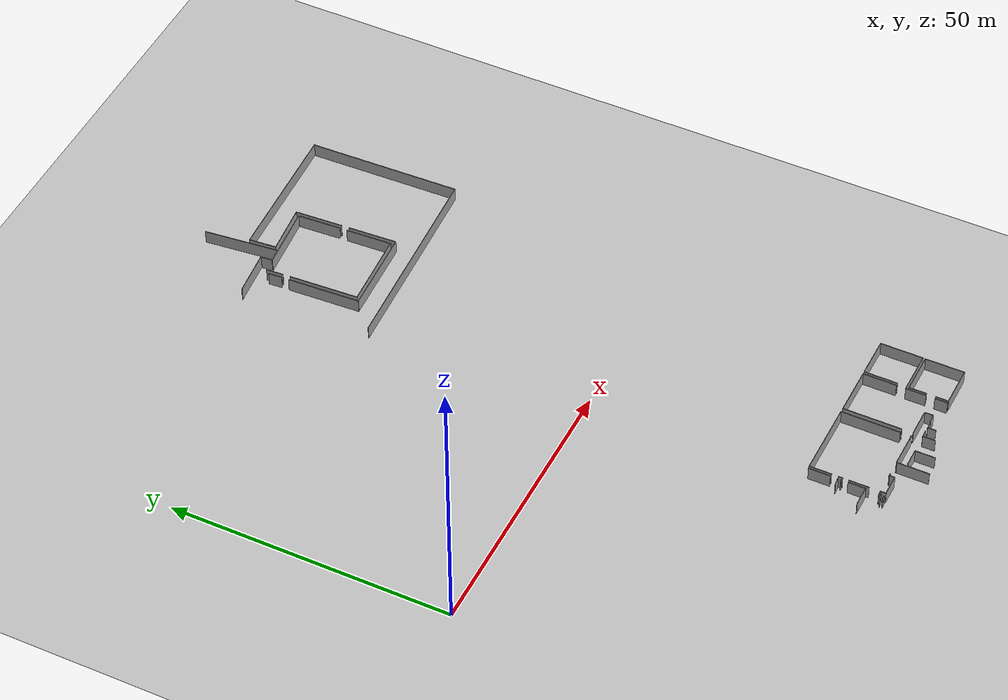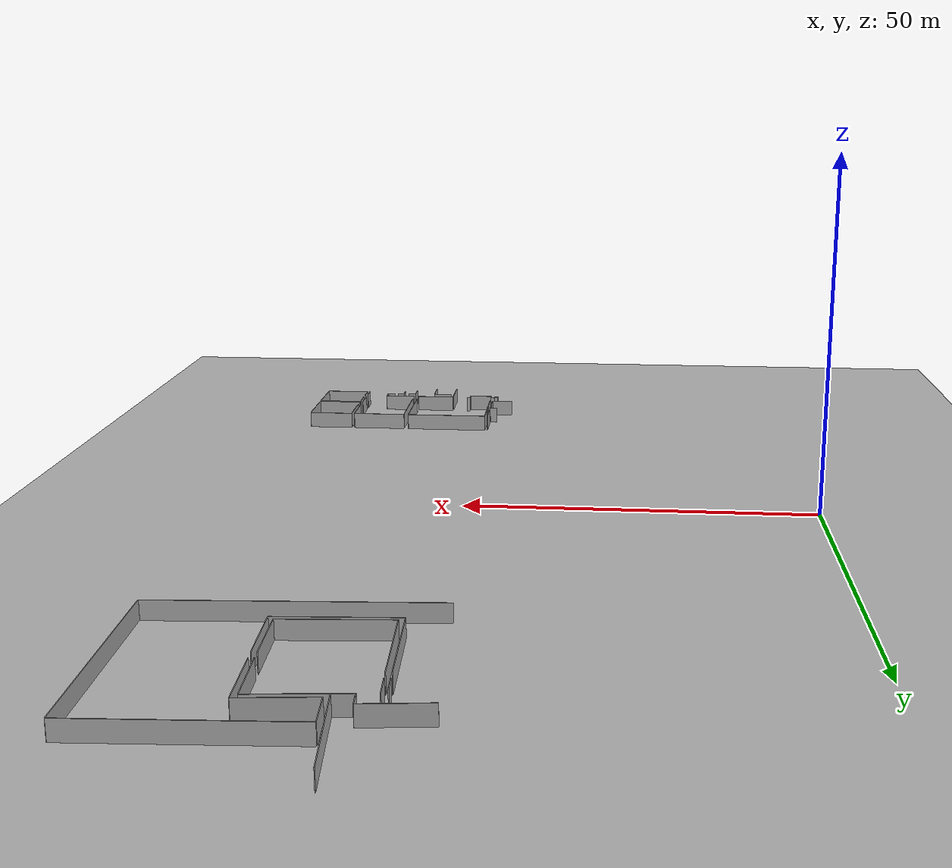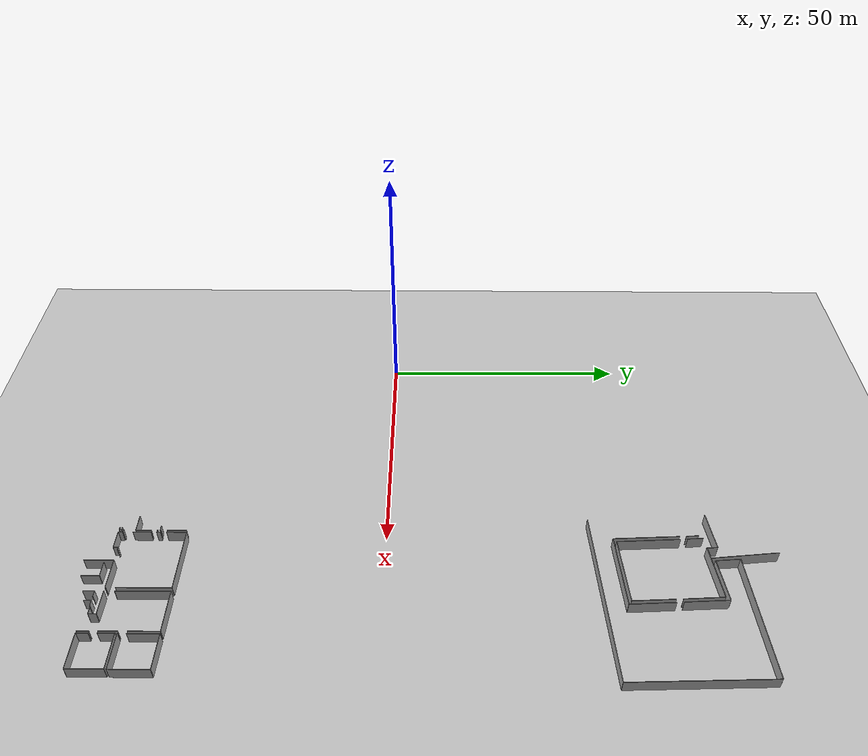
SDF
<sdf version="1.6">
 <world name="default">
  <model name="ground_plane">
   <static>1</static>
   <link name="link">
    <collision name="collision">
     <geometry><plane><normal>0 0 1</normal><size>100 100</size></plane></geometry>
     <surface><friction><ode><mu>100</mu><mu2>50</mu2></ode></friction></surface>
    </collision>
    <visual name="visual">
     <cast_shadows>0</cast_shadows>
     <geometry><plane><normal>0 0 1</normal><size>100 100</size></plane></geometry>
     <material>
      <script><uri>file://media/materials/scripts/gazebo.material</uri><name>Gazebo/Grey</name></script>
     </material>
    </visual>
   </link>
  </model>
  <model name="50023964">
   <static>1</static>
   <link name="Wall_36">
    <collision name="Wall_36_Collision">
     <geometry><box><size>5.594233273 0.1 2.5</size></box></geometry>
     <pose>2.7971166365 0 1.25 0 0 0</pose>
    </collision>
    <visual name="Wall_36_Visual">
     <pose>2.7971166365 0 1.25 0 0 0</pose>
     <geometry><box><size>5.594233273 0.1 2.5</size></box></geometry>
     <material>
      <script><uri>file://media/materials/scripts/gazebo.material</uri><name>Gazebo/Grey</name></script>
      <ambient>1 1 1 1</ambient>
     </material>
    </visual>
    <pose>139.617033438 -125.35670509 0 0 0 -1.57079632679</pose>
   </link>
   <link name="Wall_44">
    <collision name="Wall_44_Collision">
     <geometry><box><size>3.04391730971 0.1 2.5</size></box></geometry>
     <pose>1.52195865485 0 1.25 0 0 0</pose>
    </collision>
    <visual name="Wall_44_Visual">
     <pose>1.52195865485 0 1.25 0 0 0</pose>
     <geometry><box><size>3.04391730971 0.1 2.5</size></box></geometry>
     <material>
      <script><uri>file://media/materials/scripts/gazebo.material</uri><name>Gazebo/Grey</name></script>
      <ambient>1 1 1 1</ambient>
     </material>
    </visual>
    <pose>140.16398336 -127.010256899 0 0 0 0.0</pose>
   </link>
   <link name="Wall_45">
    <collision name="Wall_45_Collision">
     <geometry><box><size>3.48366199867 0.1 2.5</size></box></geometry>
     <pose>1.74183099933 0 1.25 0 0 0</pose>
    </collision>
    <visual name="Wall_45_Visual">
     <pose>1.74183099933 0 1.25 0 0 0</pose>
     <geometry><box><size>3.48366199867 0.1 2.5</size></box></geometry>
     <material>
      <script><uri>file://media/materials/scripts/gazebo.material</uri><name>Gazebo/Grey</name></script>
      <ambient>1 1 1 1</ambient>
     </material>
    </visual>
    <pose>143.20790067 -127.010256899 0 0 0 -1.57079632679</pose>
   </link>
   <link name="Wall_58">
    <collision name="Wall_58_Collision">
     <geometry><box><size>1.10787209044 0.1 2.5</size></box></geometry>
     <pose>0.553936045219 0 1.25 0 0 0</pose>
    </collision>
    <visual name="Wall_58_Visual">
     <pose>0.553936045219 0 1.25 0 0 0</pose>
     <geometry><box><size>1.10787209044 0.1 2.5</size></box></geometry>
     <material>
      <script><uri>file://media/materials/scripts/gazebo.material</uri><name>Gazebo/Grey</name></script>
      <ambient>1 1 1 1</ambient>
     </material>
    </visual>
    <pose>149.856657458 -126.960210854 0 0 0 3.14159265359</pose>
   </link>
   <link name="Wall_59">
    <collision name="Wall_59_Collision">
     <geometry><box><size>1.42313676924 0.1 2.5</size></box></geometry>
     <pose>0.711568384618 0 1.25 0 0 0</pose>
    </collision>
    <visual name="Wall_59_Visual">
     <pose>0.711568384618 0 1.25 0 0 0</pose>
     <geometry><box><size>1.42313676924 0.1 2.5</size></box></geometry>
     <material>
      <script><uri>file://media/materials/scripts/gazebo.material</uri><name>Gazebo/Grey</name></script>
      <ambient>1 1 1 1</ambient>
     </material>
    </visual>
    <pose>148.748785367 -126.960210854 0 0 0 -1.57079632679</pose>
   </link>
   <link name="Wall_62">
    <collision name="Wall_62_Collision">
     <geometry><box><size>1.23209805976 0.1 2.5</size></box></geometry>
     <pose>0.616049029882 0 1.25 0 0 0</pose>
    </collision>
    <visual name="Wall_62_Visual">
     <pose>0.616049029882 0 1.25 0 0 0</pose>
     <geometry><box><size>1.23209805976 0.1 2.5</size></box></geometry>
     <material>
      <script><uri>file://media/materials/scripts/gazebo.material</uri><name>Gazebo/Grey</name></script>
      <ambient>1 1 1 1</ambient>
     </material>
    </visual>
    <pose>147.898764726 -126.941157791 0 0 0 3.14159265359</pose>
   </link>
   <link name="Wall_63">
    <collision name="Wall_63_Collision">
     <geometry><box><size>2.1966911181 0.1 2.5</size></box></geometry>
     <pose>1.09834555905 0 1.25 0 0 0</pose>
    </collision>
    <visual name="Wall_63_Visual">
     <pose>1.09834555905 0 1.25 0 0 0</pose>
     <geometry><box><size>2.1966911181 0.1 2.5</size></box></geometry>
     <material>
      <script><uri>file://media/materials/scripts/gazebo.material</uri><name>Gazebo/Grey</name></script>
      <ambient>1 1 1 1</ambient>
     </material>
    </visual>
    <pose>146.666666667 -126.941157791 0 0 0 -1.57079632679</pose>
   </link>
   <link name="Wall_83">
    <collision name="Wall_83_Collision">
     <geometry><box><size>2.2104093233 0.1 2.5</size></box></geometry>
     <pose>1.10520466165 0 1.25 0 0 0</pose>
    </collision>
    <visual name="Wall_83_Visual">
     <pose>1.10520466165 0 1.25 0 0 0</pose>
     <geometry><box><size>2.2104093233 0.1 2.5</size></box></geometry>
     <material>
      <script><uri>file://media/materials/scripts/gazebo.material</uri><name>Gazebo/Grey</name></script>
      <ambient>1 1 1 1</ambient>
     </material>
    </visual>
    <pose>155.610936458 -127.831316884 0 0 0 1.57079632679</pose>
   </link>
   <link name="Wall_84">
    <collision name="Wall_84_Collision">
     <geometry><box><size>3.09015274205 0.1 2.5</size></box></geometry>
     <pose>1.54507637103 0 1.25 0 0 0</pose>
    </collision>
    <visual name="Wall_84_Visual">
     <pose>1.54507637103 0 1.25 0 0 0</pose>
     <geometry><box><size>3.09015274205 0.1 2.5</size></box></geometry>
     <material>
      <script><uri>file://media/materials/scripts/gazebo.material</uri><name>Gazebo/Grey</name></script>
      <ambient>1 1 1 1</ambient>
     </material>
    </visual>
    <pose>155.610936458 -124.020450287 0 0 0 1.57079632679</pose>
   </link>
   <link name="Wall_85">
    <collision name="Wall_85_Collision">
     <geometry><box><size>7.10984090693 0.1 2.5</size></box></geometry>
     <pose>3.55492045346 0 1.25 0 0 0</pose>
    </collision>
    <visual name="Wall_85_Visual">
     <pose>3.55492045346 0 1.25 0 0 0</pose>
     <geometry><box><size>7.10984090693 0.1 2.5</size></box></geometry>
     <material>
      <script><uri>file://media/materials/scripts/gazebo.material</uri><name>Gazebo/Grey</name></script>
      <ambient>1 1 1 1</ambient>
     </material>
    </visual>
    <pose>155.610936458 -120.930297545 0 0 0 0.0</pose>
   </link>
   <link name="Wall_86">
    <collision name="Wall_86_Collision">
     <geometry><box><size>6.8855228478 0.1 2.5</size></box></geometry>
     <pose>3.4427614239 0 1.25 0 0 0</pose>
    </collision>
    <visual name="Wall_86_Visual">
     <pose>3.4427614239 0 1.25 0 0 0</pose>
     <geometry><box><size>6.8855228478 0.1 2.5</size></box></geometry>
     <material>
      <script><uri>file://media/materials/scripts/gazebo.material</uri><name>Gazebo/Grey</name></script>
      <ambient>1 1 1 1</ambient>
     </material>
    </visual>
    <pose>162.720777365 -120.930297545 0 0 0 -1.57079632679</pose>
   </link>
   <link name="Wall_87">
    <collision name="Wall_87_Collision">
     <geometry><box><size>7.10985779485 0.1 2.5</size></box></geometry>
     <pose>3.55492889743 0 1.25 0 0 0</pose>
    </collision>
    <visual name="Wall_87_Visual">
     <pose>3.55492889743 0 1.25 0 0 0</pose>
     <geometry><box><size>7.10985779485 0.1 2.5</size></box></geometry>
     <material>
      <script><uri>file://media/materials/scripts/gazebo.material</uri><name>Gazebo/Grey</name></script>
      <ambient>1 1 1 1</ambient>
     </material>
    </visual>
    <pose>162.720777365 -127.815820393 0 0 0 -3.13941307366</pose>
   </link>
   <link name="Wall_88">
    <collision name="Wall_88_Collision">
     <geometry><box><size>7.14566066495 0.1 2.5</size></box></geometry>
     <pose>3.57283033248 0 1.25 0 0 0</pose>
    </collision>
    <visual name="Wall_88_Visual">
     <pose>3.57283033248 0 1.25 0 0 0</pose>
     <geometry><box><size>7.14566066495 0.1 2.5</size></box></geometry>
     <material>
      <script><uri>file://media/materials/scripts/gazebo.material</uri><name>Gazebo/Grey</name></script>
      <ambient>1 1 1 1</ambient>
     </material>
    </visual>
    <pose>155.606617764 -120.520021593 0 0 0 0.0</pose>
   </link>
   <link name="Wall_89">
    <collision name="Wall_89_Collision">
     <geometry><box><size>7.51071734781 0.1 2.5</size></box></geometry>
     <pose>3.75535867391 0 1.25 0 0 0</pose>
    </collision>
    <visual name="Wall_89_Visual">
     <pose>3.75535867391 0 1.25 0 0 0</pose>
     <geometry><box><size>7.51071734781 0.1 2.5</size></box></geometry>
     <material>
      <script><uri>file://media/materials/scripts/gazebo.material</uri><name>Gazebo/Grey</name></script>
      <ambient>1 1 1 1</ambient>
     </material>
    </visual>
    <pose>162.752278429 -120.520021593 0 0 0 1.57079632679</pose>
   </link>
   <link name="Wall_90">
    <collision name="Wall_90_Collision">
     <geometry><box><size>7.08799339494 0.1 2.5</size></box></geometry>
     <pose>3.54399669747 0 1.25 0 0 0</pose>
    </collision>
    <visual name="Wall_90_Visual">
     <pose>3.54399669747 0 1.25 0 0 0</pose>
     <geometry><box><size>7.08799339494 0.1 2.5</size></box></geometry>
     <material>
      <script><uri>file://media/materials/scripts/gazebo.material</uri><name>Gazebo/Grey</name></script>
      <ambient>1 1 1 1</ambient>
     </material>
    </visual>
    <pose>162.752278429 -113.009304246 0 0 0 3.14159265359</pose>
   </link>
   <link name="Wall_91">
    <collision name="Wall_91_Collision">
     <geometry><box><size>5.89222317488 0.1 2.5</size></box></geometry>
     <pose>2.94611158744 0 1.25 0 0 0</pose>
    </collision>
    <visual name="Wall_91_Visual">
     <pose>2.94611158744 0 1.25 0 0 0</pose>
     <geometry><box><size>5.89222317488 0.1 2.5</size></box></geometry>
     <material>
      <script><uri>file://media/materials/scripts/gazebo.material</uri><name>Gazebo/Grey</name></script>
      <ambient>1 1 1 1</ambient>
     </material>
    </visual>
    <pose>155.664285034 -113.009304246 0 0 0 -1.57079632679</pose>
   </link>
   <link name="Wall_92">
    <collision name="Wall_92_Collision">
     <geometry><box><size>0.0745535198797 0.1 2.5</size></box></geometry>
     <pose>0.0372767599399 0 1.25 0 0 0</pose>
    </collision>
    <visual name="Wall_92_Visual">
     <pose>0.0372767599399 0 1.25 0 0 0</pose>
     <geometry><box><size>0.0745535198797 0.1 2.5</size></box></geometry>
     <material>
      <script><uri>file://media/materials/scripts/gazebo.material</uri><name>Gazebo/Grey</name></script>
      <ambient>1 1 1 1</ambient>
     </material>
    </visual>
    <pose>155.664285034 -120.472769998 0 0 0 -2.45514389083</pose>
   </link>
   <link name="Wall_93">
    <collision name="Wall_93_Collision">
     <geometry><box><size>10.2807786352 0.1 2.5</size></box></geometry>
     <pose>5.14038931758 0 1.25 0 0 0</pose>
    </collision>
    <visual name="Wall_93_Visual">
     <pose>5.14038931758 0 1.25 0 0 0</pose>
     <geometry><box><size>10.2807786352 0.1 2.5</size></box></geometry>
     <material>
      <script><uri>file://media/materials/scripts/gazebo.material</uri><name>Gazebo/Grey</name></script>
      <ambient>1 1 1 1</ambient>
     </material>
    </visual>
    <pose>146.641770665 -123.309389984 0 0 0 1.57079632679</pose>
   </link>
   <link name="Wall_94">
    <collision name="Wall_94_Collision">
     <geometry><box><size>8.5421231463 0.1 2.5</size></box></geometry>
     <pose>4.27106157315 0 1.25 0 0 0</pose>
    </collision>
    <visual name="Wall_94_Visual">
     <pose>4.27106157315 0 1.25 0 0 0</pose>
     <geometry><box><size>8.5421231463 0.1 2.5</size></box></geometry>
     <material>
      <script><uri>file://media/materials/scripts/gazebo.material</uri><name>Gazebo/Grey</name></script>
      <ambient>1 1 1 1</ambient>
     </material>
    </visual>
    <pose>146.641770665 -113.028611349 0 0 0 0.0</pose>
   </link>
   <link name="Wall_95">
    <collision name="Wall_95_Collision">
     <geometry><box><size>5.85716553936 0.1 2.5</size></box></geometry>
     <pose>2.92858276968 0 1.25 0 0 0</pose>
    </collision>
    <visual name="Wall_95_Visual">
     <pose>2.92858276968 0 1.25 0 0 0</pose>
     <geometry><box><size>5.85716553936 0.1 2.5</size></box></geometry>
     <material>
      <script><uri>file://media/materials/scripts/gazebo.material</uri><name>Gazebo/Grey</name></script>
      <ambient>1 1 1 1</ambient>
     </material>
    </visual>
    <pose>155.183893811 -113.028611349 0 0 0 -1.57079632679</pose>
   </link>
   <link name="Wall_96">
    <collision name="Wall_96_Collision">
     <geometry><box><size>3.57460861834 0.1 2.5</size></box></geometry>
     <pose>1.78730430917 0 1.25 0 0 0</pose>
    </collision>
    <visual name="Wall_96_Visual">
     <pose>1.78730430917 0 1.25 0 0 0</pose>
     <geometry><box><size>3.57460861834 0.1 2.5</size></box></geometry>
     <material>
      <script><uri>file://media/materials/scripts/gazebo.material</uri><name>Gazebo/Grey</name></script>
      <ambient>1 1 1 1</ambient>
     </material>
    </visual>
    <pose>155.183893811 -120.512654409 0 0 0 -1.57079632679</pose>
   </link>
   <link name="Wall_97">
    <collision name="Wall_97_Collision">
     <geometry><box><size>2.24826140802 0.1 2.5</size></box></geometry>
     <pose>1.12413070401 0 1.25 0 0 0</pose>
    </collision>
    <visual name="Wall_97_Visual">
     <pose>1.12413070401 0 1.25 0 0 0</pose>
     <geometry><box><size>2.24826140802 0.1 2.5</size></box></geometry>
     <material>
      <script><uri>file://media/materials/scripts/gazebo.material</uri><name>Gazebo/Grey</name></script>
      <ambient>1 1 1 1</ambient>
     </material>
    </visual>
    <pose>155.183893811 -125.620907561 0 0 0 -1.57079632679</pose>
   </link>
   <link name="Wall_99">
    <collision name="Wall_99_Collision">
     <geometry><box><size>1.23768695818 0.1 2.5</size></box></geometry>
     <pose>0.618843479089 0 1.25 0 0 0</pose>
    </collision>
    <visual name="Wall_99_Visual">
     <pose>0.618843479089 0 1.25 0 0 0</pose>
     <geometry><box><size>1.23768695818 0.1 2.5</size></box></geometry>
     <material>
      <script><uri>file://media/materials/scripts/gazebo.material</uri><name>Gazebo/Grey</name></script>
      <ambient>1 1 1 1</ambient>
     </material>
    </visual>
    <pose>150.382013909 -126.795592391 0 0 0 0.0</pose>
   </link>
   <link name="Wall_100">
    <collision name="Wall_100_Collision">
     <geometry><box><size>1.51560763393 0.1 2.5</size></box></geometry>
     <pose>0.757803816964 0 1.25 0 0 0</pose>
    </collision>
    <visual name="Wall_100_Visual">
     <pose>0.757803816964 0 1.25 0 0 0</pose>
     <geometry><box><size>1.51560763393 0.1 2.5</size></box></geometry>
     <material>
      <script><uri>file://media/materials/scripts/gazebo.material</uri><name>Gazebo/Grey</name></script>
      <ambient>1 1 1 1</ambient>
     </material>
    </visual>
    <pose>151.619700867 -126.795592391 0 0 0 1.57079632679</pose>
   </link>
   <link name="Wall_101">
    <collision name="Wall_101_Collision">
     <geometry><box><size>4.96929281382 0.1 2.5</size></box></geometry>
     <pose>2.48464640691 0 1.25 0 0 0</pose>
    </collision>
    <visual name="Wall_101_Visual">
     <pose>2.48464640691 0 1.25 0 0 0</pose>
     <geometry><box><size>4.96929281382 0.1 2.5</size></box></geometry>
     <material>
      <script><uri>file://media/materials/scripts/gazebo.material</uri><name>Gazebo/Grey</name></script>
      <ambient>1 1 1 1</ambient>
     </material>
    </visual>
    <pose>151.619700867 -125.279984758 0 0 0 3.14159265359</pose>
   </link>
   <link name="Wall_102">
    <collision name="Wall_102_Collision">
     <geometry><box><size>0.0437931331092 0.1 2.5</size></box></geometry>
     <pose>0.0218965665546 0 1.25 0 0 0</pose>
    </collision>
    <visual name="Wall_102_Visual">
     <pose>0.0218965665546 0 1.25 0 0 0</pose>
     <geometry><box><size>0.0437931331092 0.1 2.5</size></box></geometry>
     <material>
      <script><uri>file://media/materials/scripts/gazebo.material</uri><name>Gazebo/Grey</name></script>
      <ambient>1 1 1 1</ambient>
     </material>
    </visual>
    <pose>146.650408053 -123.352322886 0 0 0 1.76932954258</pose>
   </link>
   <link name="Wall_105">
    <collision name="Wall_105_Collision">
     <geometry><box><size>3.51694134832 0.1 2.5</size></box></geometry>
     <pose>1.75847067416 0 1.25 0 0 0</pose>
    </collision>
    <visual name="Wall_105_Visual">
     <pose>1.75847067416 0 1.25 0 0 0</pose>
     <geometry><box><size>3.51694134832 0.1 2.5</size></box></geometry>
     <material>
      <script><uri>file://media/materials/scripts/gazebo.material</uri><name>Gazebo/Grey</name></script>
      <ambient>1 1 1 1</ambient>
     </material>
    </visual>
    <pose>132.771140961 -123.385602236 0 0 0 1.57079632679</pose>
   </link>
   <link name="Wall_106">
    <collision name="Wall_106_Collision">
     <geometry><box><size>0.772284144676 0.1 2.5</size></box></geometry>
     <pose>0.386142072338 0 1.25 0 0 0</pose>
    </collision>
    <visual name="Wall_106_Visual">
     <pose>0.386142072338 0 1.25 0 0 0</pose>
     <geometry><box><size>0.772284144676 0.1 2.5</size></box></geometry>
     <material>
      <script><uri>file://media/materials/scripts/gazebo.material</uri><name>Gazebo/Grey</name></script>
      <ambient>1 1 1 1</ambient>
     </material>
    </visual>
    <pose>132.771140961 -118.824553047 0 0 0 1.57079632679</pose>
   </link>
   <link name="Wall_107">
    <collision name="Wall_107_Collision">
     <geometry><box><size>3.86878790766 0.1 2.5</size></box></geometry>
     <pose>1.93439395383 0 1.25 0 0 0</pose>
    </collision>
    <visual name="Wall_107_Visual">
     <pose>1.93439395383 0 1.25 0 0 0</pose>
     <geometry><box><size>3.86878790766 0.1 2.5</size></box></geometry>
     <material>
      <script><uri>file://media/materials/scripts/gazebo.material</uri><name>Gazebo/Grey</name></script>
      <ambient>1 1 1 1</ambient>
     </material>
    </visual>
    <pose>132.771140961 -116.884697215 0 0 0 1.57079632679</pose>
   </link>
   <link name="Wall_108">
    <collision name="Wall_108_Collision">
     <geometry><box><size>13.1019021308 0.1 2.5</size></box></geometry>
     <pose>6.55095106538 0 1.25 0 0 0</pose>
    </collision>
    <visual name="Wall_108_Visual">
     <pose>6.55095106538 0 1.25 0 0 0</pose>
     <geometry><box><size>13.1019021308 0.1 2.5</size></box></geometry>
     <material>
      <script><uri>file://media/materials/scripts/gazebo.material</uri><name>Gazebo/Grey</name></script>
      <ambient>1 1 1 1</ambient>
     </material>
    </visual>
    <pose>132.771140961 -113.015909307 0 0 0 0.0</pose>
   </link>
   <link name="Wall_109">
    <collision name="Wall_109_Collision">
     <geometry><box><size>10.3529262329 0.1 2.5</size></box></geometry>
     <pose>5.17646311645 0 1.25 0 0 0</pose>
    </collision>
    <visual name="Wall_109_Visual">
     <pose>5.17646311645 0 1.25 0 0 0</pose>
     <geometry><box><size>10.3529262329 0.1 2.5</size></box></geometry>
     <material>
      <script><uri>file://media/materials/scripts/gazebo.material</uri><name>Gazebo/Grey</name></script>
      <ambient>1 1 1 1</ambient>
     </material>
    </visual>
    <pose>145.873043092 -113.015909307 0 0 0 -1.57079632679</pose>
   </link>
   <link name="Wall_110">
    <collision name="Wall_110_Collision">
     <geometry><box><size>0.11508049919 0.1 2.5</size></box></geometry>
     <pose>0.0575402495951 0 1.25 0 0 0</pose>
    </collision>
    <visual name="Wall_110_Visual">
     <pose>0.0575402495951 0 1.25 0 0 0</pose>
     <geometry><box><size>0.11508049919 0.1 2.5</size></box></geometry>
     <material>
      <script><uri>file://media/materials/scripts/gazebo.material</uri><name>Gazebo/Grey</name></script>
      <ambient>1 1 1 1</ambient>
     </material>
    </visual>
    <pose>145.873043092 -125.149661808 0 0 0 -1.57079632679</pose>
   </link>
   <link name="Wall_111">
    <collision name="Wall_111_Collision">
     <geometry><box><size>6.25270712267 0.1 2.5</size></box></geometry>
     <pose>3.12635356133 0 1.25 0 0 0</pose>
    </collision>
    <visual name="Wall_111_Visual">
     <pose>3.12635356133 0 1.25 0 0 0</pose>
     <geometry><box><size>6.25270712267 0.1 2.5</size></box></geometry>
     <material>
      <script><uri>file://media/materials/scripts/gazebo.material</uri><name>Gazebo/Grey</name></script>
      <ambient>1 1 1 1</ambient>
     </material>
    </visual>
    <pose>145.873043092 -125.264742307 0 0 0 3.14159265359</pose>
   </link>
   <link name="Wall_112">
    <collision name="Wall_112_Collision">
     <geometry><box><size>0.492585183068 0.1 2.5</size></box></geometry>
     <pose>0.246292591534 0 1.25 0 0 0</pose>
    </collision>
    <visual name="Wall_112_Visual">
     <pose>0.246292591534 0 1.25 0 0 0</pose>
     <geometry><box><size>0.492585183068 0.1 2.5</size></box></geometry>
     <material>
      <script><uri>file://media/materials/scripts/gazebo.material</uri><name>Gazebo/Grey</name></script>
      <ambient>1 1 1 1</ambient>
     </material>
    </visual>
    <pose>137.031659839 -125.264742307 0 0 0 3.14159265359</pose>
   </link>
   <link name="Wall_113">
    <collision name="Wall_113_Collision">
     <geometry><box><size>0.609189927281 0.1 2.5</size></box></geometry>
     <pose>0.30459496364 0 1.25 0 0 0</pose>
    </collision>
    <visual name="Wall_113_Visual">
     <pose>0.30459496364 0 1.25 0 0 0</pose>
     <geometry><box><size>0.609189927281 0.1 2.5</size></box></geometry>
     <material>
      <script><uri>file://media/materials/scripts/gazebo.material</uri><name>Gazebo/Grey</name></script>
      <ambient>1 1 1 1</ambient>
     </material>
    </visual>
    <pose>132.812295577 -125.264742307 0 0 0 3.14159265359</pose>
   </link>
   <link name="Wall_114">
    <collision name="Wall_114_Collision">
     <geometry><box><size>0.422215871201 0.1 2.5</size></box></geometry>
     <pose>0.211107935601 0 1.25 0 0 0</pose>
    </collision>
    <visual name="Wall_114_Visual">
     <pose>0.211107935601 0 1.25 0 0 0</pose>
     <geometry><box><size>0.422215871201 0.1 2.5</size></box></geometry>
     <material>
      <script><uri>file://media/materials/scripts/gazebo.material</uri><name>Gazebo/Grey</name></script>
      <ambient>1 1 1 1</ambient>
     </material>
    </visual>
    <pose>132.203105649 -125.264742307 0 0 0 -1.57079632679</pose>
   </link>
   <link name="Wall_115">
    <collision name="Wall_115_Collision">
     <geometry><box><size>0.571337842558 0.1 2.5</size></box></geometry>
     <pose>0.285668921279 0 1.25 0 0 0</pose>
    </collision>
    <visual name="Wall_115_Visual">
     <pose>0.285668921279 0 1.25 0 0 0</pose>
     <geometry><box><size>0.571337842558 0.1 2.5</size></box></geometry>
     <material>
      <script><uri>file://media/materials/scripts/gazebo.material</uri><name>Gazebo/Grey</name></script>
      <ambient>1 1 1 1</ambient>
     </material>
    </visual>
    <pose>132.203105649 -125.686958179 0 0 0 3.14159265359</pose>
   </link>
   <link name="Wall_120">
    <collision name="Wall_120_Collision">
     <geometry><box><size>3.80197516751 0.1 2.5</size></box></geometry>
     <pose>1.90098758375 0 1.25 0 0 0</pose>
    </collision>
    <visual name="Wall_120_Visual">
     <pose>1.90098758375 0 1.25 0 0 0</pose>
     <geometry><box><size>3.80197516751 0.1 2.5</size></box></geometry>
     <material>
      <script><uri>file://media/materials/scripts/gazebo.material</uri><name>Gazebo/Grey</name></script>
      <ambient>1 1 1 1</ambient>
     </material>
    </visual>
    <pose>132.314375536 -113.079419517 0 0 0 -1.57079632679</pose>
   </link>
   <link name="Wall_121">
    <collision name="Wall_121_Collision">
     <geometry><box><size>0.137182052015 0.1 2.5</size></box></geometry>
     <pose>0.0685910260074 0 1.25 0 0 0</pose>
    </collision>
    <visual name="Wall_121_Visual">
     <pose>0.0685910260074 0 1.25 0 0 0</pose>
     <geometry><box><size>0.137182052015 0.1 2.5</size></box></geometry>
     <material>
      <script><uri>file://media/materials/scripts/gazebo.material</uri><name>Gazebo/Grey</name></script>
      <ambient>1 1 1 1</ambient>
     </material>
    </visual>
    <pose>132.314375536 -118.065224985 0 0 0 -1.57079632679</pose>
   </link>
   <link name="Wall_122">
    <collision name="Wall_122_Collision">
     <geometry><box><size>1.15601393862 0.1 2.5</size></box></geometry>
     <pose>0.578006969312 0 1.25 0 0 0</pose>
    </collision>
    <visual name="Wall_122_Visual">
     <pose>0.578006969312 0 1.25 0 0 0</pose>
     <geometry><box><size>1.15601393862 0.1 2.5</size></box></geometry>
     <material>
      <script><uri>file://media/materials/scripts/gazebo.material</uri><name>Gazebo/Grey</name></script>
      <ambient>1 1 1 1</ambient>
     </material>
    </visual>
    <pose>132.314375536 -118.202407037 0 0 0 -3.11587838427</pose>
   </link>
   <link name="Wall_132">
    <collision name="Wall_132_Collision">
     <geometry><box><size>0.162332094884 0.1 2.5</size></box></geometry>
     <pose>0.0811660474421 0 1.25 0 0 0</pose>
    </collision>
    <visual name="Wall_132_Visual">
     <pose>0.0811660474421 0 1.25 0 0 0</pose>
     <geometry><box><size>0.162332094884 0.1 2.5</size></box></geometry>
     <material>
      <script><uri>file://media/materials/scripts/gazebo.material</uri><name>Gazebo/Grey</name></script>
      <ambient>1 1 1 1</ambient>
     </material>
    </visual>
    <pose>132.331650313 -118.641897685 0 0 0 -1.57079632679</pose>
   </link>
   <link name="Wall_133">
    <collision name="Wall_133_Collision">
     <geometry><box><size>3.03121526785 0.1 2.5</size></box></geometry>
     <pose>1.51560763393 0 1.25 0 0 0</pose>
    </collision>
    <visual name="Wall_133_Visual">
     <pose>1.51560763393 0 1.25 0 0 0</pose>
     <geometry><box><size>3.03121526785 0.1 2.5</size></box></geometry>
     <material>
      <script><uri>file://media/materials/scripts/gazebo.material</uri><name>Gazebo/Grey</name></script>
      <ambient>1 1 1 1</ambient>
     </material>
    </visual>
    <pose>132.331650313 -119.901686196 0 0 0 -1.57079632679</pose>
   </link>
   <link name="Wall_134">
    <collision name="Wall_134_Collision">
     <geometry><box><size>3.53249341552 0.1 2.5</size></box></geometry>
     <pose>1.76624670776 0 1.25 0 0 0</pose>
    </collision>
    <visual name="Wall_134_Visual">
     <pose>1.76624670776 0 1.25 0 0 0</pose>
     <geometry><box><size>3.53249341552 0.1 2.5</size></box></geometry>
     <material>
      <script><uri>file://media/materials/scripts/gazebo.material</uri><name>Gazebo/Grey</name></script>
      <ambient>1 1 1 1</ambient>
     </material>
    </visual>
    <pose>132.331650313 -122.932901464 0 0 0 -3.13598321944</pose>
   </link>
   <link name="Wall_135">
    <collision name="Wall_135_Collision">
     <geometry><box><size>3.70569369026 0.1 2.5</size></box></geometry>
     <pose>1.85284684513 0 1.25 0 0 0</pose>
    </collision>
    <visual name="Wall_135_Visual">
     <pose>1.85284684513 0 1.25 0 0 0</pose>
     <geometry><box><size>3.70569369026 0.1 2.5</size></box></geometry>
     <material>
      <script><uri>file://media/materials/scripts/gazebo.material</uri><name>Gazebo/Grey</name></script>
      <ambient>1 1 1 1</ambient>
     </material>
    </visual>
    <pose>132.799593535 -126.225016671 0 0 0 0.0</pose>
   </link>
   <link name="Wall_136">
    <collision name="Wall_136_Collision">
     <geometry><box><size>0.859674192626 0.1 2.5</size></box></geometry>
     <pose>0.429837096313 0 1.25 0 0 0</pose>
    </collision>
    <visual name="Wall_136_Visual">
     <pose>0.429837096313 0 1.25 0 0 0</pose>
     <geometry><box><size>0.859674192626 0.1 2.5</size></box></geometry>
     <material>
      <script><uri>file://media/materials/scripts/gazebo.material</uri><name>Gazebo/Grey</name></script>
      <ambient>1 1 1 1</ambient>
     </material>
    </visual>
    <pose>136.505287225 -126.225016671 0 0 0 1.57079632679</pose>
   </link>
   <link name="Wall_137">
    <collision name="Wall_137_Collision">
     <geometry><box><size>0.859674192626 0.1 2.5</size></box></geometry>
     <pose>0.429837096313 0 1.25 0 0 0</pose>
    </collision>
    <visual name="Wall_137_Visual">
     <pose>0.429837096313 0 1.25 0 0 0</pose>
     <geometry><box><size>0.859674192626 0.1 2.5</size></box></geometry>
     <material>
      <script><uri>file://media/materials/scripts/gazebo.material</uri><name>Gazebo/Grey</name></script>
      <ambient>1 1 1 1</ambient>
     </material>
    </visual>
    <pose>132.799593535 -125.365342479 0 0 0 -1.57079632679</pose>
   </link>
   <link name="Wall_140">
    <collision name="Wall_140_Collision">
     <geometry><box><size>0.576164618462 0.1 2.5</size></box></geometry>
     <pose>0.288082309231 0 1.25 0 0 0</pose>
    </collision>
    <visual name="Wall_140_Visual">
     <pose>0.288082309231 0 1.25 0 0 0</pose>
     <geometry><box><size>0.576164618462 0.1 2.5</size></box></geometry>
     <material>
      <script><uri>file://media/materials/scripts/gazebo.material</uri><name>Gazebo/Grey</name></script>
      <ambient>1 1 1 1</ambient>
     </material>
    </visual>
    <pose>132.171350545 -126.186910546 0 0 0 3.14159265359</pose>
   </link>
   <link name="Wall_240">
    <collision name="Wall_240_Collision">
     <geometry><box><size>12.3392433498 0.1 2.5</size></box></geometry>
     <pose>6.16962167488 0 1.25 0 0 0</pose>
    </collision>
    <visual name="Wall_240_Visual">
     <pose>6.16962167488 0 1.25 0 0 0</pose>
     <geometry><box><size>12.3392433498 0.1 2.5</size></box></geometry>
     <material>
      <script><uri>file://media/materials/scripts/gazebo.material</uri><name>Gazebo/Grey</name></script>
      <ambient>1 1 1 1</ambient>
     </material>
    </visual>
    <pose>134.40360738 -30.4188498301 0 0 0 1.62406218306</pose>
   </link>
   <link name="Wall_241">
    <collision name="Wall_241_Collision">
     <geometry><box><size>3.05525695664 0.1 2.5</size></box></geometry>
     <pose>1.52762847832 0 1.25 0 0 0</pose>
    </collision>
    <visual name="Wall_241_Visual">
     <pose>1.52762847832 0 1.25 0 0 0</pose>
     <geometry><box><size>3.05525695664 0.1 2.5</size></box></geometry>
     <material>
      <script><uri>file://media/materials/scripts/gazebo.material</uri><name>Gazebo/Grey</name></script>
      <ambient>1 1 1 1</ambient>
     </material>
    </visual>
    <pose>133.657997523 -16.762376552 0 0 0 1.63736449057</pose>
   </link>
   <link name="Wall_242">
    <collision name="Wall_242_Collision">
     <geometry><box><size>11.3840883592 0.1 2.5</size></box></geometry>
     <pose>5.6920441796 0 1.25 0 0 0</pose>
    </collision>
    <visual name="Wall_242_Visual">
     <pose>5.6920441796 0 1.25 0 0 0</pose>
     <geometry><box><size>11.3840883592 0.1 2.5</size></box></geometry>
     <material>
      <script><uri>file://media/materials/scripts/gazebo.material</uri><name>Gazebo/Grey</name></script>
      <ambient>1 1 1 1</ambient>
     </material>
    </visual>
    <pose>135.773141533 -13.5195452669 0 0 0 0.0952299216531</pose>
   </link>
   <link name="Wall_243">
    <collision name="Wall_243_Collision">
     <geometry><box><size>7.74563597086 0.1 2.5</size></box></geometry>
     <pose>3.87281798543 0 1.25 0 0 0</pose>
    </collision>
    <visual name="Wall_243_Visual">
     <pose>3.87281798543 0 1.25 0 0 0</pose>
     <geometry><box><size>7.74563597086 0.1 2.5</size></box></geometry>
     <material>
      <script><uri>file://media/materials/scripts/gazebo.material</uri><name>Gazebo/Grey</name></script>
      <ambient>1 1 1 1</ambient>
     </material>
    </visual>
    <pose>147.105649233 -12.4370772602 0 0 0 -1.51087144558</pose>
   </link>
   <link name="Wall_244">
    <collision name="Wall_244_Collision">
     <geometry><box><size>8.1461245571 0.1 2.5</size></box></geometry>
     <pose>4.07306227855 0 1.25 0 0 0</pose>
    </collision>
    <visual name="Wall_244_Visual">
     <pose>4.07306227855 0 1.25 0 0 0</pose>
     <geometry><box><size>8.1461245571 0.1 2.5</size></box></geometry>
     <material>
      <script><uri>file://media/materials/scripts/gazebo.material</uri><name>Gazebo/Grey</name></script>
      <ambient>1 1 1 1</ambient>
     </material>
    </visual>
    <pose>147.62059001 -21.4435870566 0 0 0 -1.52009819985</pose>
   </link>
   <link name="Wall_245">
    <collision name="Wall_245_Collision">
     <geometry><box><size>13.655634625 0.1 2.5</size></box></geometry>
     <pose>6.82781731252 0 1.25 0 0 0</pose>
    </collision>
    <visual name="Wall_245_Visual">
     <pose>6.82781731252 0 1.25 0 0 0</pose>
     <geometry><box><size>13.655634625 0.1 2.5</size></box></geometry>
     <material>
      <script><uri>file://media/materials/scripts/gazebo.material</uri><name>Gazebo/Grey</name></script>
      <ambient>1 1 1 1</ambient>
     </material>
    </visual>
    <pose>148.03340637 -29.5792448636 0 0 0 -3.08006970833</pose>
   </link>
   <link name="Wall_248">
    <collision name="Wall_248_Collision">
     <geometry><box><size>2.3881613796 0.1 2.5</size></box></geometry>
     <pose>1.1940806898 0 1.25 0 0 0</pose>
    </collision>
    <visual name="Wall_248_Visual">
     <pose>1.1940806898 0 1.25 0 0 0</pose>
     <geometry><box><size>2.3881613796 0.1 2.5</size></box></geometry>
     <material>
      <script><uri>file://media/materials/scripts/gazebo.material</uri><name>Gazebo/Grey</name></script>
      <ambient>1 1 1 1</ambient>
     </material>
    </visual>
    <pose>132.824489537 -14.4856625703 0 0 0 -1.49829139394</pose>
   </link>
   <link name="Wall_249">
    <collision name="Wall_249_Collision">
     <geometry><box><size>12.9125587834 0.1 2.5</size></box></geometry>
     <pose>6.45627939169 0 1.25 0 0 0</pose>
    </collision>
    <visual name="Wall_249_Visual">
     <pose>6.45627939169 0 1.25 0 0 0</pose>
     <geometry><box><size>12.9125587834 0.1 2.5</size></box></geometry>
     <material>
      <script><uri>file://media/materials/scripts/gazebo.material</uri><name>Gazebo/Grey</name></script>
      <ambient>1 1 1 1</ambient>
     </material>
    </visual>
    <pose>133.040424248 -18.1413102156 0 0 0 -1.5199566559</pose>
   </link>
   <link name="Wall_250">
    <collision name="Wall_250_Collision">
     <geometry><box><size>15.11106842 0.1 2.5</size></box></geometry>
     <pose>7.55553421 0 1.25 0 0 0</pose>
    </collision>
    <visual name="Wall_250_Visual">
     <pose>7.55553421 0 1.25 0 0 0</pose>
     <geometry><box><size>15.11106842 0.1 2.5</size></box></geometry>
     <material>
      <script><uri>file://media/materials/scripts/gazebo.material</uri><name>Gazebo/Grey</name></script>
      <ambient>1 1 1 1</ambient>
     </material>
    </visual>
    <pose>133.69661173 -31.0371852275 0 0 0 0.055574040849</pose>
   </link>
   <link name="Wall_251">
    <collision name="Wall_251_Collision">
     <geometry><box><size>8.75059311956 0.1 2.5</size></box></geometry>
     <pose>4.37529655978 0 1.25 0 0 0</pose>
    </collision>
    <visual name="Wall_251_Visual">
     <pose>4.37529655978 0 1.25 0 0 0</pose>
     <geometry><box><size>8.75059311956 0.1 2.5</size></box></geometry>
     <material>
      <script><uri>file://media/materials/scripts/gazebo.material</uri><name>Gazebo/Grey</name></script>
      <ambient>1 1 1 1</ambient>
     </material>
    </visual>
    <pose>148.784351084 -30.1978343019 0 0 0 1.62554762254</pose>
   </link>
   <link name="Wall_252">
    <collision name="Wall_252_Collision">
     <geometry><box><size>8.50271870655 0.1 2.5</size></box></geometry>
     <pose>4.25135935327 0 1.25 0 0 0</pose>
    </collision>
    <visual name="Wall_252_Visual">
     <pose>4.25135935327 0 1.25 0 0 0</pose>
     <geometry><box><size>8.50271870655 0.1 2.5</size></box></geometry>
     <material>
      <script><uri>file://media/materials/scripts/gazebo.material</uri><name>Gazebo/Grey</name></script>
      <ambient>1 1 1 1</ambient>
     </material>
    </visual>
    <pose>148.223428916 -20.1322282557 0 0 0 1.62648708013</pose>
   </link>
   <link name="Wall_253">
    <collision name="Wall_253_Collision">
     <geometry><box><size>8.95673442604 0.1 2.5</size></box></geometry>
     <pose>4.47836721302 0 1.25 0 0 0</pose>
    </collision>
    <visual name="Wall_253_Visual">
     <pose>4.47836721302 0 1.25 0 0 0</pose>
     <geometry><box><size>8.95673442604 0.1 2.5</size></box></geometry>
     <material>
      <script><uri>file://media/materials/scripts/gazebo.material</uri><name>Gazebo/Grey</name></script>
      <ambient>1 1 1 1</ambient>
     </material>
    </visual>
    <pose>147.750150837 -11.6426915627 0 0 0 -3.04275656048</pose>
   </link>
   <link name="Wall_254">
    <collision name="Wall_254_Collision">
     <geometry><box><size>4.81930238747 0.1 2.5</size></box></geometry>
     <pose>2.40965119373 0 1.25 0 0 0</pose>
    </collision>
    <visual name="Wall_254_Visual">
     <pose>2.40965119373 0 1.25 0 0 0</pose>
     <geometry><box><size>4.81930238747 0.1 2.5</size></box></geometry>
     <material>
      <script><uri>file://media/materials/scripts/gazebo.material</uri><name>Gazebo/Grey</name></script>
      <ambient>1 1 1 1</ambient>
     </material>
    </visual>
    <pose>138.837128068 -12.5264996348 0 0 0 1.65460295283</pose>
   </link>
   <link name="Wall_255">
    <collision name="Wall_255_Collision">
     <geometry><box><size>25.2890184885 0.1 2.5</size></box></geometry>
     <pose>12.6445092442 0 1.25 0 0 0</pose>
    </collision>
    <visual name="Wall_255_Visual">
     <pose>12.6445092442 0 1.25 0 0 0</pose>
     <geometry><box><size>25.2890184885 0.1 2.5</size></box></geometry>
     <material>
      <script><uri>file://media/materials/scripts/gazebo.material</uri><name>Gazebo/Grey</name></script>
      <ambient>1 1 1 1</ambient>
     </material>
    </visual>
    <pose>138.433711219 -7.72411165095 0 0 0 0.0478750486811</pose>
   </link>
   <link name="Wall_256">
    <collision name="Wall_256_Collision">
     <geometry><box><size>26.9440143552 0.1 2.5</size></box></geometry>
     <pose>13.4720071776 0 1.25 0 0 0</pose>
    </collision>
    <visual name="Wall_256_Visual">
     <pose>13.4720071776 0 1.25 0 0 0</pose>
     <geometry><box><size>26.9440143552 0.1 2.5</size></box></geometry>
     <material>
      <script><uri>file://media/materials/scripts/gazebo.material</uri><name>Gazebo/Grey</name></script>
      <ambient>1 1 1 1</ambient>
     </material>
    </visual>
    <pose>163.693753771 -6.51386110317 0 0 0 -1.54016786696</pose>
   </link>
   <link name="Wall_257">
    <collision name="Wall_257_Collision">
     <geometry><box><size>35.6246363745 0.1 2.5</size></box></geometry>
     <pose>17.8123181872 0 1.25 0 0 0</pose>
    </collision>
    <visual name="Wall_257_Visual">
     <pose>17.8123181872 0 1.25 0 0 0</pose>
     <geometry><box><size>35.6246363745 0.1 2.5</size></box></geometry>
     <material>
      <script><uri>file://media/materials/scripts/gazebo.material</uri><name>Gazebo/Grey</name></script>
      <ambient>1 1 1 1</ambient>
     </material>
    </visual>
    <pose>164.51887841 -33.4452383221 0 0 0 -3.0869987922</pose>
   </link>
   <link name="Wall_260">
    <collision name="Wall_260_Collision">
     <geometry><box><size>13.3052031367 0.1 2.5</size></box></geometry>
     <pose>6.65260156836 0 1.25 0 0 0</pose>
    </collision>
    <visual name="Wall_260_Visual">
     <pose>6.65260156836 0 1.25 0 0 0</pose>
     <geometry><box><size>13.3052031367 0.1 2.5</size></box></geometry>
     <material>
      <script><uri>file://media/materials/scripts/gazebo.material</uri><name>Gazebo/Grey</name></script>
      <ambient>1 1 1 1</ambient>
     </material>
    </visual>
    <pose>136.855609539 -0.0 0 0 0 -1.46601133207</pose>
   </link>
   <link name="Wall_261">
    <collision name="Wall_261_Collision">
     <geometry><box><size>2.42236190664 0.1 2.5</size></box></geometry>
     <pose>1.21118095332 0 1.25 0 0 0</pose>
    </collision>
    <visual name="Wall_261_Visual">
     <pose>1.21118095332 0 1.25 0 0 0</pose>
     <geometry><box><size>2.42236190664 0.1 2.5</size></box></geometry>
     <material>
      <script><uri>file://media/materials/scripts/gazebo.material</uri><name>Gazebo/Grey</name></script>
      <ambient>1 1 1 1</ambient>
     </material>
    </visual>
    <pose>138.247245245 -13.2322250802 0 0 0 -3.03188509975</pose>
   </link>
   <link name="Wall_262">
    <collision name="Wall_262_Collision">
     <geometry><box><size>2.08404382201 0.1 2.5</size></box></geometry>
     <pose>1.04202191101 0 1.25 0 0 0</pose>
    </collision>
    <visual name="Wall_262_Visual">
     <pose>1.04202191101 0 1.25 0 0 0</pose>
     <geometry><box><size>2.08404382201 0.1 2.5</size></box></geometry>
     <material>
      <script><uri>file://media/materials/scripts/gazebo.material</uri><name>Gazebo/Grey</name></script>
      <ambient>1 1 1 1</ambient>
     </material>
    </visual>
    <pose>135.839446191 -13.4974437141 0 0 0 1.65573946797</pose>
   </link>
   <link name="Wall_263">
    <collision name="Wall_263_Collision">
     <geometry><box><size>8.08232507331 0.1 2.5</size></box></geometry>
     <pose>4.04116253666 0 1.25 0 0 0</pose>
    </collision>
    <visual name="Wall_263_Visual">
     <pose>4.04116253666 0 1.25 0 0 0</pose>
     <geometry><box><size>8.08232507331 0.1 2.5</size></box></geometry>
     <material>
      <script><uri>file://media/materials/scripts/gazebo.material</uri><name>Gazebo/Grey</name></script>
      <ambient>1 1 1 1</ambient>
     </material>
    </visual>
    <pose>135.662633768 -11.4209139119 0 0 0 -3.04030392101</pose>
   </link>
   <pose>-82.25 74.5341192722 0 0 0 0</pose>
  </model>
 </world>
</sdf>
